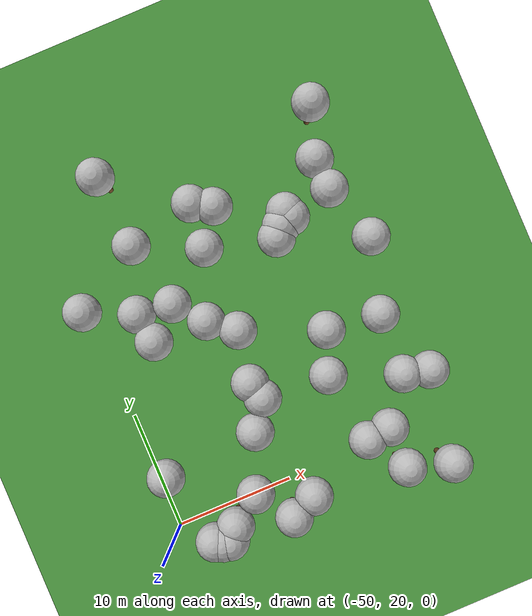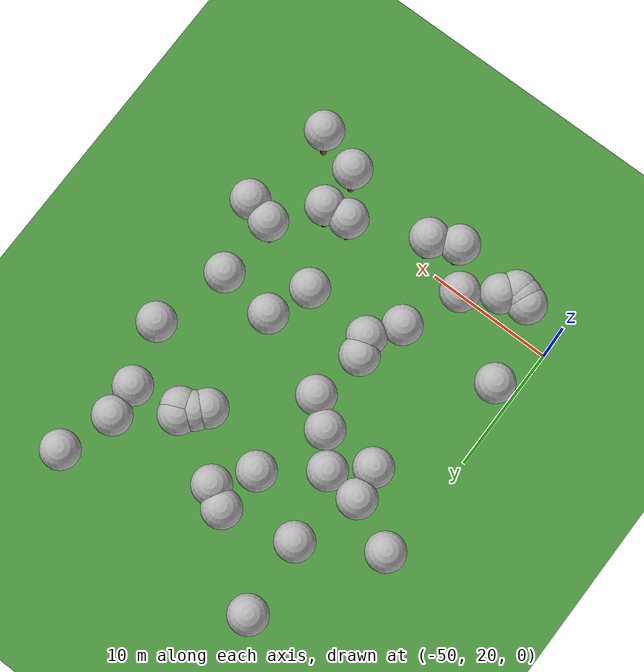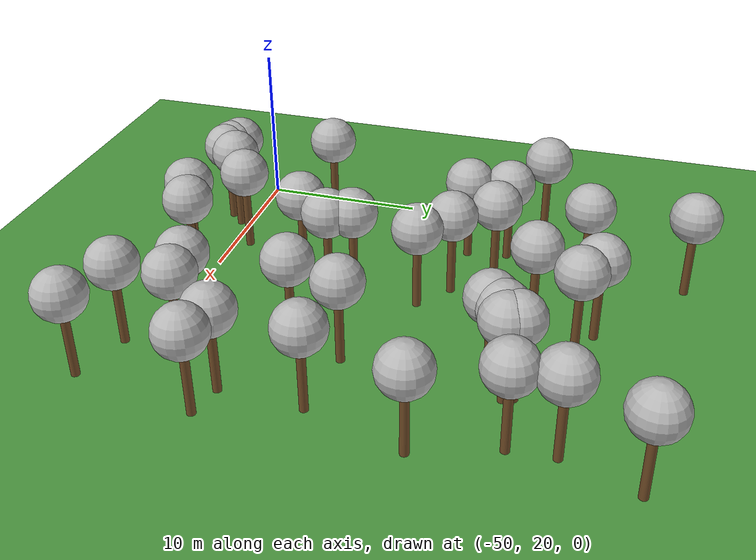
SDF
<sdf version="1.5">
 <world name="default">
  <model name="tree_simple493">
   <static>1</static>
   <link name="link">
    <pose>0 0 0.1 0 -0 0</pose>
    <collision name="collision_trunk">
     <pose>0 0 2 0 -0 0</pose>
     <geometry><cylinder><radius>0.25</radius><length>4</length></cylinder></geometry>
    </collision>
    <collision name="collision_treetop">
     <pose>0 0 5.2 0 -0 0</pose>
     <geometry><sphere><radius>1.5</radius></sphere></geometry>
    </collision>
    <visual name="trunk">
     <pose>0 0 2 0 -0 0</pose>
     <geometry><cylinder><radius>0.25</radius><length>4</length></cylinder></geometry>
     <material>
      <script>
       <uri>model://tree_simple/scripts</uri>
       <uri>model://tree_simple/materials/textures</uri>
       <name>TreeSimple/Trunk</name>
      </script>
     </material>
    </visual>
    <visual name="treetop">
     <pose>0 0 5.2 0 -0 0</pose>
     <geometry><sphere><radius>1.5</radius></sphere></geometry>
     <material>
      <script>
       <uri>model://tree_simple/scripts</uri>
       <uri>model://tree_simple/materials/textures</uri>
       <name>TreeSimple/Treetop</name>
      </script>
     </material>
    </visual>
   </link>
   <pose>-30.9686104206 18.3944298941 0 0 -0 0</pose>
  </model>
  <model name="tree_simple489">
   <static>1</static>
   <link name="link">
    <pose>0 0 0.1 0 -0 0</pose>
    <collision name="collision_trunk">
     <pose>0 0 2 0 -0 0</pose>
     <geometry><cylinder><radius>0.25</radius><length>4</length></cylinder></geometry>
    </collision>
    <collision name="collision_treetop">
     <pose>0 0 5.2 0 -0 0</pose>
     <geometry><sphere><radius>1.5</radius></sphere></geometry>
    </collision>
    <visual name="trunk">
     <pose>0 0 2 0 -0 0</pose>
     <geometry><cylinder><radius>0.25</radius><length>4</length></cylinder></geometry>
     <material>
      <script>
       <uri>model://tree_simple/scripts</uri>
       <uri>model://tree_simple/materials/textures</uri>
       <name>TreeSimple/Trunk</name>
      </script>
     </material>
    </visual>
    <visual name="treetop">
     <pose>0 0 5.2 0 -0 0</pose>
     <geometry><sphere><radius>1.5</radius></sphere></geometry>
     <material>
      <script>
       <uri>model://tree_simple/scripts</uri>
       <uri>model://tree_simple/materials/textures</uri>
       <name>TreeSimple/Treetop</name>
      </script>
     </material>
    </visual>
   </link>
   <pose>-32.6634579524 39.3278172931 0 0 -0 0</pose>
  </model>
  <model name="tree_simple482">
   <static>1</static>
   <link name="link">
    <pose>0 0 0.1 0 -0 0</pose>
    <collision name="collision_trunk">
     <pose>0 0 2 0 -0 0</pose>
     <geometry><cylinder><radius>0.25</radius><length>4</length></cylinder></geometry>
    </collision>
    <collision name="collision_treetop">
     <pose>0 0 5.2 0 -0 0</pose>
     <geometry><sphere><radius>1.5</radius></sphere></geometry>
    </collision>
    <visual name="trunk">
     <pose>0 0 2 0 -0 0</pose>
     <geometry><cylinder><radius>0.25</radius><length>4</length></cylinder></geometry>
     <material>
      <script>
       <uri>model://tree_simple/scripts</uri>
       <uri>model://tree_simple/materials/textures</uri>
       <name>TreeSimple/Trunk</name>
      </script>
     </material>
    </visual>
    <visual name="treetop">
     <pose>0 0 5.2 0 -0 0</pose>
     <geometry><sphere><radius>1.5</radius></sphere></geometry>
     <material>
      <script>
       <uri>model://tree_simple/scripts</uri>
       <uri>model://tree_simple/materials/textures</uri>
       <name>TreeSimple/Treetop</name>
      </script>
     </material>
    </visual>
   </link>
   <pose>-31.7137183406 39.6850484597 0 0 -0 0</pose>
  </model>
  <model name="tree_simple476">
   <static>1</static>
   <link name="link">
    <pose>0 0 0.1 0 -0 0</pose>
    <collision name="collision_trunk">
     <pose>0 0 2 0 -0 0</pose>
     <geometry><cylinder><radius>0.25</radius><length>4</length></cylinder></geometry>
    </collision>
    <collision name="collision_treetop">
     <pose>0 0 5.2 0 -0 0</pose>
     <geometry><sphere><radius>1.5</radius></sphere></geometry>
    </collision>
    <visual name="trunk">
     <pose>0 0 2 0 -0 0</pose>
     <geometry><cylinder><radius>0.25</radius><length>4</length></cylinder></geometry>
     <material>
      <script>
       <uri>model://tree_simple/scripts</uri>
       <uri>model://tree_simple/materials/textures</uri>
       <name>TreeSimple/Trunk</name>
      </script>
     </material>
    </visual>
    <visual name="treetop">
     <pose>0 0 5.2 0 -0 0</pose>
     <geometry><sphere><radius>1.5</radius></sphere></geometry>
     <material>
      <script>
       <uri>model://tree_simple/scripts</uri>
       <uri>model://tree_simple/materials/textures</uri>
       <name>TreeSimple/Treetop</name>
      </script>
     </material>
    </visual>
   </link>
   <pose>-40.490555579 18.243153787 0 0 -0 0</pose>
  </model>
  <model name="tree_simple474">
   <static>1</static>
   <link name="link">
    <pose>0 0 0.1 0 -0 0</pose>
    <collision name="collision_trunk">
     <pose>0 0 2 0 -0 0</pose>
     <geometry><cylinder><radius>0.25</radius><length>4</length></cylinder></geometry>
    </collision>
    <collision name="collision_treetop">
     <pose>0 0 5.2 0 -0 0</pose>
     <geometry><sphere><radius>1.5</radius></sphere></geometry>
    </collision>
    <visual name="trunk">
     <pose>0 0 2 0 -0 0</pose>
     <geometry><cylinder><radius>0.25</radius><length>4</length></cylinder></geometry>
     <material>
      <script>
       <uri>model://tree_simple/scripts</uri>
       <uri>model://tree_simple/materials/textures</uri>
       <name>TreeSimple/Trunk</name>
      </script>
     </material>
    </visual>
    <visual name="treetop">
     <pose>0 0 5.2 0 -0 0</pose>
     <geometry><sphere><radius>1.5</radius></sphere></geometry>
     <material>
      <script>
       <uri>model://tree_simple/scripts</uri>
       <uri>model://tree_simple/materials/textures</uri>
       <name>TreeSimple/Treetop</name>
      </script>
     </material>
    </visual>
   </link>
   <pose>-45.5609359524 37.3889677829 0 0 -0 0</pose>
  </model>
  <model name="tree_simple470">
   <static>1</static>
   <link name="link">
    <pose>0 0 0.1 0 -0 0</pose>
    <collision name="collision_trunk">
     <pose>0 0 2 0 -0 0</pose>
     <geometry><cylinder><radius>0.25</radius><length>4</length></cylinder></geometry>
    </collision>
    <collision name="collision_treetop">
     <pose>0 0 5.2 0 -0 0</pose>
     <geometry><sphere><radius>1.5</radius></sphere></geometry>
    </collision>
    <visual name="trunk">
     <pose>0 0 2 0 -0 0</pose>
     <geometry><cylinder><radius>0.25</radius><length>4</length></cylinder></geometry>
     <material>
      <script>
       <uri>model://tree_simple/scripts</uri>
       <uri>model://tree_simple/materials/textures</uri>
       <name>TreeSimple/Trunk</name>
      </script>
     </material>
    </visual>
    <visual name="treetop">
     <pose>0 0 5.2 0 -0 0</pose>
     <geometry><sphere><radius>1.5</radius></sphere></geometry>
     <material>
      <script>
       <uri>model://tree_simple/scripts</uri>
       <uri>model://tree_simple/materials/textures</uri>
       <name>TreeSimple/Treetop</name>
      </script>
     </material>
    </visual>
   </link>
   <pose>-42.5418923399 21.0598314505 0 0 -0 0</pose>
  </model>
  <model name="tree_simple467">
   <static>1</static>
   <link name="link">
    <pose>0 0 0.1 0 -0 0</pose>
    <collision name="collision_trunk">
     <pose>0 0 2 0 -0 0</pose>
     <geometry><cylinder><radius>0.25</radius><length>4</length></cylinder></geometry>
    </collision>
    <collision name="collision_treetop">
     <pose>0 0 5.2 0 -0 0</pose>
     <geometry><sphere><radius>1.5</radius></sphere></geometry>
    </collision>
    <visual name="trunk">
     <pose>0 0 2 0 -0 0</pose>
     <geometry><cylinder><radius>0.25</radius><length>4</length></cylinder></geometry>
     <material>
      <script>
       <uri>model://tree_simple/scripts</uri>
       <uri>model://tree_simple/materials/textures</uri>
       <name>TreeSimple/Trunk</name>
      </script>
     </material>
    </visual>
    <visual name="treetop">
     <pose>0 0 5.2 0 -0 0</pose>
     <geometry><sphere><radius>1.5</radius></sphere></geometry>
     <material>
      <script>
       <uri>model://tree_simple/scripts</uri>
       <uri>model://tree_simple/materials/textures</uri>
       <name>TreeSimple/Treetop</name>
      </script>
     </material>
    </visual>
   </link>
   <pose>-38.4435588212 19.1731926836 0 0 -0 0</pose>
  </model>
  <model name="tree_simple462">
   <static>1</static>
   <link name="link">
    <pose>0 0 0.1 0 -0 0</pose>
    <collision name="collision_trunk">
     <pose>0 0 2 0 -0 0</pose>
     <geometry><cylinder><radius>0.25</radius><length>4</length></cylinder></geometry>
    </collision>
    <collision name="collision_treetop">
     <pose>0 0 5.2 0 -0 0</pose>
     <geometry><sphere><radius>1.5</radius></sphere></geometry>
    </collision>
    <visual name="trunk">
     <pose>0 0 2 0 -0 0</pose>
     <geometry><cylinder><radius>0.25</radius><length>4</length></cylinder></geometry>
     <material>
      <script>
       <uri>model://tree_simple/scripts</uri>
       <uri>model://tree_simple/materials/textures</uri>
       <name>TreeSimple/Trunk</name>
      </script>
     </material>
    </visual>
    <visual name="treetop">
     <pose>0 0 5.2 0 -0 0</pose>
     <geometry><sphere><radius>1.5</radius></sphere></geometry>
     <material>
      <script>
       <uri>model://tree_simple/scripts</uri>
       <uri>model://tree_simple/materials/textures</uri>
       <name>TreeSimple/Treetop</name>
      </script>
     </material>
    </visual>
   </link>
   <pose>-33.3479265171 38.6010387018 0 0 -0 0</pose>
  </model>
  <model name="tree_simple440">
   <static>1</static>
   <link name="link">
    <pose>0 0 0.1 0 -0 0</pose>
    <collision name="collision_trunk">
     <pose>0 0 2 0 -0 0</pose>
     <geometry><cylinder><radius>0.25</radius><length>4</length></cylinder></geometry>
    </collision>
    <collision name="collision_treetop">
     <pose>0 0 5.2 0 -0 0</pose>
     <geometry><sphere><radius>1.5</radius></sphere></geometry>
    </collision>
    <visual name="trunk">
     <pose>0 0 2 0 -0 0</pose>
     <geometry><cylinder><radius>0.25</radius><length>4</length></cylinder></geometry>
     <material>
      <script>
       <uri>model://tree_simple/scripts</uri>
       <uri>model://tree_simple/materials/textures</uri>
       <name>TreeSimple/Trunk</name>
      </script>
     </material>
    </visual>
    <visual name="treetop">
     <pose>0 0 5.2 0 -0 0</pose>
     <geometry><sphere><radius>1.5</radius></sphere></geometry>
     <material>
      <script>
       <uri>model://tree_simple/scripts</uri>
       <uri>model://tree_simple/materials/textures</uri>
       <name>TreeSimple/Treetop</name>
      </script>
     </material>
    </visual>
   </link>
   <pose>-31.0139863597 21.7755311208 0 0 -0 0</pose>
  </model>
  <model name="tree_simple420">
   <static>1</static>
   <link name="link">
    <pose>0 0 0.1 0 -0 0</pose>
    <collision name="collision_trunk">
     <pose>0 0 2 0 -0 0</pose>
     <geometry><cylinder><radius>0.25</radius><length>4</length></cylinder></geometry>
    </collision>
    <collision name="collision_treetop">
     <pose>0 0 5.2 0 -0 0</pose>
     <geometry><sphere><radius>1.5</radius></sphere></geometry>
    </collision>
    <visual name="trunk">
     <pose>0 0 2 0 -0 0</pose>
     <geometry><cylinder><radius>0.25</radius><length>4</length></cylinder></geometry>
     <material>
      <script>
       <uri>model://tree_simple/scripts</uri>
       <uri>model://tree_simple/materials/textures</uri>
       <name>TreeSimple/Trunk</name>
      </script>
     </material>
    </visual>
    <visual name="treetop">
     <pose>0 0 5.2 0 -0 0</pose>
     <geometry><sphere><radius>1.5</radius></sphere></geometry>
     <material>
      <script>
       <uri>model://tree_simple/scripts</uri>
       <uri>model://tree_simple/materials/textures</uri>
       <name>TreeSimple/Treetop</name>
      </script>
     </material>
    </visual>
   </link>
   <pose>-46.8738530937 18.9140158148 0 0 -0 0</pose>
  </model>
  <model name="tree_simple410">
   <static>1</static>
   <link name="link">
    <pose>0 0 0.1 0 -0 0</pose>
    <collision name="collision_trunk">
     <pose>0 0 2 0 -0 0</pose>
     <geometry><cylinder><radius>0.25</radius><length>4</length></cylinder></geometry>
    </collision>
    <collision name="collision_treetop">
     <pose>0 0 5.2 0 -0 0</pose>
     <geometry><sphere><radius>1.5</radius></sphere></geometry>
    </collision>
    <visual name="trunk">
     <pose>0 0 2 0 -0 0</pose>
     <geometry><cylinder><radius>0.25</radius><length>4</length></cylinder></geometry>
     <material>
      <script>
       <uri>model://tree_simple/scripts</uri>
       <uri>model://tree_simple/materials/textures</uri>
       <name>TreeSimple/Trunk</name>
      </script>
     </material>
    </visual>
    <visual name="treetop">
     <pose>0 0 5.2 0 -0 0</pose>
     <geometry><sphere><radius>1.5</radius></sphere></geometry>
     <material>
      <script>
       <uri>model://tree_simple/scripts</uri>
       <uri>model://tree_simple/materials/textures</uri>
       <name>TreeSimple/Treetop</name>
      </script>
     </material>
    </visual>
   </link>
   <pose>-31.9347087499 40.2537422087 0 0 -0 0</pose>
  </model>
  <model name="tree_simple358">
   <static>1</static>
   <link name="link">
    <pose>0 0 0.1 0 -0 0</pose>
    <collision name="collision_trunk">
     <pose>0 0 2 0 -0 0</pose>
     <geometry><cylinder><radius>0.25</radius><length>4</length></cylinder></geometry>
    </collision>
    <collision name="collision_treetop">
     <pose>0 0 5.2 0 -0 0</pose>
     <geometry><sphere><radius>1.5</radius></sphere></geometry>
    </collision>
    <visual name="trunk">
     <pose>0 0 2 0 -0 0</pose>
     <geometry><cylinder><radius>0.25</radius><length>4</length></cylinder></geometry>
     <material>
      <script>
       <uri>model://tree_simple/scripts</uri>
       <uri>model://tree_simple/materials/textures</uri>
       <name>TreeSimple/Trunk</name>
      </script>
     </material>
    </visual>
    <visual name="treetop">
     <pose>0 0 5.2 0 -0 0</pose>
     <geometry><sphere><radius>1.5</radius></sphere></geometry>
     <material>
      <script>
       <uri>model://tree_simple/scripts</uri>
       <uri>model://tree_simple/materials/textures</uri>
       <name>TreeSimple/Treetop</name>
      </script>
     </material>
    </visual>
   </link>
   <pose>-28.1059387966 40.529489556 0 0 -0 0</pose>
  </model>
  <model name="tree_simple351">
   <static>1</static>
   <link name="link">
    <pose>0 0 0.1 0 -0 0</pose>
    <collision name="collision_trunk">
     <pose>0 0 2 0 -0 0</pose>
     <geometry><cylinder><radius>0.25</radius><length>4</length></cylinder></geometry>
    </collision>
    <collision name="collision_treetop">
     <pose>0 0 5.2 0 -0 0</pose>
     <geometry><sphere><radius>1.5</radius></sphere></geometry>
    </collision>
    <visual name="trunk">
     <pose>0 0 2 0 -0 0</pose>
     <geometry><cylinder><radius>0.25</radius><length>4</length></cylinder></geometry>
     <material>
      <script>
       <uri>model://tree_simple/scripts</uri>
       <uri>model://tree_simple/materials/textures</uri>
       <name>TreeSimple/Trunk</name>
      </script>
     </material>
    </visual>
    <visual name="treetop">
     <pose>0 0 5.2 0 -0 0</pose>
     <geometry><sphere><radius>1.5</radius></sphere></geometry>
     <material>
      <script>
       <uri>model://tree_simple/scripts</uri>
       <uri>model://tree_simple/materials/textures</uri>
       <name>TreeSimple/Treetop</name>
      </script>
     </material>
    </visual>
   </link>
   <pose>-28.4628783032 25.1782097003 0 0 -0 0</pose>
  </model>
  <model name="tree_simple336">
   <static>1</static>
   <link name="link">
    <pose>0 0 0.1 0 -0 0</pose>
    <collision name="collision_trunk">
     <pose>0 0 2 0 -0 0</pose>
     <geometry><cylinder><radius>0.25</radius><length>4</length></cylinder></geometry>
    </collision>
    <collision name="collision_treetop">
     <pose>0 0 5.2 0 -0 0</pose>
     <geometry><sphere><radius>1.5</radius></sphere></geometry>
    </collision>
    <visual name="trunk">
     <pose>0 0 2 0 -0 0</pose>
     <geometry><cylinder><radius>0.25</radius><length>4</length></cylinder></geometry>
     <material>
      <script>
       <uri>model://tree_simple/scripts</uri>
       <uri>model://tree_simple/materials/textures</uri>
       <name>TreeSimple/Trunk</name>
      </script>
     </material>
    </visual>
    <visual name="treetop">
     <pose>0 0 5.2 0 -0 0</pose>
     <geometry><sphere><radius>1.5</radius></sphere></geometry>
     <material>
      <script>
       <uri>model://tree_simple/scripts</uri>
       <uri>model://tree_simple/materials/textures</uri>
       <name>TreeSimple/Treetop</name>
      </script>
     </material>
    </visual>
   </link>
   <pose>-43.9020074738 42.4187815875 0 0 -0 0</pose>
  </model>
  <model name="tree_simple331">
   <static>1</static>
   <link name="link">
    <pose>0 0 0.1 0 -0 0</pose>
    <collision name="collision_trunk">
     <pose>0 0 2 0 -0 0</pose>
     <geometry><cylinder><radius>0.25</radius><length>4</length></cylinder></geometry>
    </collision>
    <collision name="collision_treetop">
     <pose>0 0 5.2 0 -0 0</pose>
     <geometry><sphere><radius>1.5</radius></sphere></geometry>
    </collision>
    <visual name="trunk">
     <pose>0 0 2 0 -0 0</pose>
     <geometry><cylinder><radius>0.25</radius><length>4</length></cylinder></geometry>
     <material>
      <script>
       <uri>model://tree_simple/scripts</uri>
       <uri>model://tree_simple/materials/textures</uri>
       <name>TreeSimple/Trunk</name>
      </script>
     </material>
    </visual>
    <visual name="treetop">
     <pose>0 0 5.2 0 -0 0</pose>
     <geometry><sphere><radius>1.5</radius></sphere></geometry>
     <material>
      <script>
       <uri>model://tree_simple/scripts</uri>
       <uri>model://tree_simple/materials/textures</uri>
       <name>TreeSimple/Treetop</name>
      </script>
     </material>
    </visual>
   </link>
   <pose>-40.8341940448 34.8238319948 0 0 -0 0</pose>
  </model>
  <model name="tree_simple319">
   <static>1</static>
   <link name="link">
    <pose>0 0 0.1 0 -0 0</pose>
    <collision name="collision_trunk">
     <pose>0 0 2 0 -0 0</pose>
     <geometry><cylinder><radius>0.25</radius><length>4</length></cylinder></geometry>
    </collision>
    <collision name="collision_treetop">
     <pose>0 0 5.2 0 -0 0</pose>
     <geometry><sphere><radius>1.5</radius></sphere></geometry>
    </collision>
    <visual name="trunk">
     <pose>0 0 2 0 -0 0</pose>
     <geometry><cylinder><radius>0.25</radius><length>4</length></cylinder></geometry>
     <material>
      <script>
       <uri>model://tree_simple/scripts</uri>
       <uri>model://tree_simple/materials/textures</uri>
       <name>TreeSimple/Trunk</name>
      </script>
     </material>
    </visual>
    <visual name="treetop">
     <pose>0 0 5.2 0 -0 0</pose>
     <geometry><sphere><radius>1.5</radius></sphere></geometry>
     <material>
      <script>
       <uri>model://tree_simple/scripts</uri>
       <uri>model://tree_simple/materials/textures</uri>
       <name>TreeSimple/Treetop</name>
      </script>
     </material>
    </visual>
   </link>
   <pose>-33.8227496689 27.309967617 0 0 -0 0</pose>
  </model>
  <model name="tree_simple311">
   <static>1</static>
   <link name="link">
    <pose>0 0 0.1 0 -0 0</pose>
    <collision name="collision_trunk">
     <pose>0 0 2 0 -0 0</pose>
     <geometry><cylinder><radius>0.25</radius><length>4</length></cylinder></geometry>
    </collision>
    <collision name="collision_treetop">
     <pose>0 0 5.2 0 -0 0</pose>
     <geometry><sphere><radius>1.5</radius></sphere></geometry>
    </collision>
    <visual name="trunk">
     <pose>0 0 2 0 -0 0</pose>
     <geometry><cylinder><radius>0.25</radius><length>4</length></cylinder></geometry>
     <material>
      <script>
       <uri>model://tree_simple/scripts</uri>
       <uri>model://tree_simple/materials/textures</uri>
       <name>TreeSimple/Trunk</name>
      </script>
     </material>
    </visual>
    <visual name="treetop">
     <pose>0 0 5.2 0 -0 0</pose>
     <geometry><sphere><radius>1.5</radius></sphere></geometry>
     <material>
      <script>
       <uri>model://tree_simple/scripts</uri>
       <uri>model://tree_simple/materials/textures</uri>
       <name>TreeSimple/Treetop</name>
      </script>
     </material>
    </visual>
   </link>
   <pose>-49.3857645653 39.1709388153 0 0 -0 0</pose>
  </model>
  <model name="tree_simple291">
   <static>1</static>
   <link name="link">
    <pose>0 0 0.1 0 -0 0</pose>
    <collision name="collision_trunk">
     <pose>0 0 2 0 -0 0</pose>
     <geometry><cylinder><radius>0.25</radius><length>4</length></cylinder></geometry>
    </collision>
    <collision name="collision_treetop">
     <pose>0 0 5.2 0 -0 0</pose>
     <geometry><sphere><radius>1.5</radius></sphere></geometry>
    </collision>
    <visual name="trunk">
     <pose>0 0 2 0 -0 0</pose>
     <geometry><cylinder><radius>0.25</radius><length>4</length></cylinder></geometry>
     <material>
      <script>
       <uri>model://tree_simple/scripts</uri>
       <uri>model://tree_simple/materials/textures</uri>
       <name>TreeSimple/Trunk</name>
      </script>
     </material>
    </visual>
    <visual name="treetop">
     <pose>0 0 5.2 0 -0 0</pose>
     <geometry><sphere><radius>1.5</radius></sphere></geometry>
     <material>
      <script>
       <uri>model://tree_simple/scripts</uri>
       <uri>model://tree_simple/materials/textures</uri>
       <name>TreeSimple/Treetop</name>
      </script>
     </material>
    </visual>
   </link>
   <pose>-38.780558868 40.0860126223 0 0 -0 0</pose>
  </model>
  <model name="tree_simple286">
   <static>1</static>
   <link name="link">
    <pose>0 0 0.1 0 -0 0</pose>
    <collision name="collision_trunk">
     <pose>0 0 2 0 -0 0</pose>
     <geometry><cylinder><radius>0.25</radius><length>4</length></cylinder></geometry>
    </collision>
    <collision name="collision_treetop">
     <pose>0 0 5.2 0 -0 0</pose>
     <geometry><sphere><radius>1.5</radius></sphere></geometry>
    </collision>
    <visual name="trunk">
     <pose>0 0 2 0 -0 0</pose>
     <geometry><cylinder><radius>0.25</radius><length>4</length></cylinder></geometry>
     <material>
      <script>
       <uri>model://tree_simple/scripts</uri>
       <uri>model://tree_simple/materials/textures</uri>
       <name>TreeSimple/Trunk</name>
      </script>
     </material>
    </visual>
    <visual name="treetop">
     <pose>0 0 5.2 0 -0 0</pose>
     <geometry><sphere><radius>1.5</radius></sphere></geometry>
     <material>
      <script>
       <uri>model://tree_simple/scripts</uri>
       <uri>model://tree_simple/materials/textures</uri>
       <name>TreeSimple/Treetop</name>
      </script>
     </material>
    </visual>
   </link>
   <pose>-48.4343960976 24.9011596552 0 0 -0 0</pose>
  </model>
  <model name="tree_simple264">
   <static>1</static>
   <link name="link">
    <pose>0 0 0.1 0 -0 0</pose>
    <collision name="collision_trunk">
     <pose>0 0 2 0 -0 0</pose>
     <geometry><cylinder><radius>0.25</radius><length>4</length></cylinder></geometry>
    </collision>
    <collision name="collision_treetop">
     <pose>0 0 5.2 0 -0 0</pose>
     <geometry><sphere><radius>1.5</radius></sphere></geometry>
    </collision>
    <visual name="trunk">
     <pose>0 0 2 0 -0 0</pose>
     <geometry><cylinder><radius>0.25</radius><length>4</length></cylinder></geometry>
     <material>
      <script>
       <uri>model://tree_simple/scripts</uri>
       <uri>model://tree_simple/materials/textures</uri>
       <name>TreeSimple/Trunk</name>
      </script>
     </material>
    </visual>
    <visual name="treetop">
     <pose>0 0 5.2 0 -0 0</pose>
     <geometry><sphere><radius>1.5</radius></sphere></geometry>
     <material>
      <script>
       <uri>model://tree_simple/scripts</uri>
       <uri>model://tree_simple/materials/textures</uri>
       <name>TreeSimple/Treetop</name>
      </script>
     </material>
    </visual>
   </link>
   <pose>-26.5960769864 35.8751081016 0 0 -0 0</pose>
  </model>
  <model name="tree_simple256">
   <static>1</static>
   <link name="link">
    <pose>0 0 0.1 0 -0 0</pose>
    <collision name="collision_trunk">
     <pose>0 0 2 0 -0 0</pose>
     <geometry><cylinder><radius>0.25</radius><length>4</length></cylinder></geometry>
    </collision>
    <collision name="collision_treetop">
     <pose>0 0 5.2 0 -0 0</pose>
     <geometry><sphere><radius>1.5</radius></sphere></geometry>
    </collision>
    <visual name="trunk">
     <pose>0 0 2 0 -0 0</pose>
     <geometry><cylinder><radius>0.25</radius><length>4</length></cylinder></geometry>
     <material>
      <script>
       <uri>model://tree_simple/scripts</uri>
       <uri>model://tree_simple/materials/textures</uri>
       <name>TreeSimple/Trunk</name>
      </script>
     </material>
    </visual>
    <visual name="treetop">
     <pose>0 0 5.2 0 -0 0</pose>
     <geometry><sphere><radius>1.5</radius></sphere></geometry>
     <material>
      <script>
       <uri>model://tree_simple/scripts</uri>
       <uri>model://tree_simple/materials/textures</uri>
       <name>TreeSimple/Treetop</name>
      </script>
     </material>
    </visual>
   </link>
   <pose>-38.4325558623 43.6568851864 0 0 -0 0</pose>
  </model>
  <model name="tree_simple247">
   <static>1</static>
   <link name="link">
    <pose>0 0 0.1 0 -0 0</pose>
    <collision name="collision_trunk">
     <pose>0 0 2 0 -0 0</pose>
     <geometry><cylinder><radius>0.25</radius><length>4</length></cylinder></geometry>
    </collision>
    <collision name="collision_treetop">
     <pose>0 0 5.2 0 -0 0</pose>
     <geometry><sphere><radius>1.5</radius></sphere></geometry>
    </collision>
    <visual name="trunk">
     <pose>0 0 2 0 -0 0</pose>
     <geometry><cylinder><radius>0.25</radius><length>4</length></cylinder></geometry>
     <material>
      <script>
       <uri>model://tree_simple/scripts</uri>
       <uri>model://tree_simple/materials/textures</uri>
       <name>TreeSimple/Trunk</name>
      </script>
     </material>
    </visual>
    <visual name="treetop">
     <pose>0 0 5.2 0 -0 0</pose>
     <geometry><sphere><radius>1.5</radius></sphere></geometry>
     <material>
      <script>
       <uri>model://tree_simple/scripts</uri>
       <uri>model://tree_simple/materials/textures</uri>
       <name>TreeSimple/Treetop</name>
      </script>
     </material>
    </visual>
   </link>
   <pose>-44.3832388131 48.3955182604 0 0 -0 0</pose>
  </model>
  <model name="tree_simple236">
   <static>1</static>
   <link name="link">
    <pose>0 0 0.1 0 -0 0</pose>
    <collision name="collision_trunk">
     <pose>0 0 2 0 -0 0</pose>
     <geometry><cylinder><radius>0.25</radius><length>4</length></cylinder></geometry>
    </collision>
    <collision name="collision_treetop">
     <pose>0 0 5.2 0 -0 0</pose>
     <geometry><sphere><radius>1.5</radius></sphere></geometry>
    </collision>
    <visual name="trunk">
     <pose>0 0 2 0 -0 0</pose>
     <geometry><cylinder><radius>0.25</radius><length>4</length></cylinder></geometry>
     <material>
      <script>
       <uri>model://tree_simple/scripts</uri>
       <uri>model://tree_simple/materials/textures</uri>
       <name>TreeSimple/Trunk</name>
      </script>
     </material>
    </visual>
    <visual name="treetop">
     <pose>0 0 5.2 0 -0 0</pose>
     <geometry><sphere><radius>1.5</radius></sphere></geometry>
     <material>
      <script>
       <uri>model://tree_simple/scripts</uri>
       <uri>model://tree_simple/materials/textures</uri>
       <name>TreeSimple/Treetop</name>
      </script>
     </material>
    </visual>
   </link>
   <pose>-28.2556560036 43.088579588 0 0 -0 0</pose>
  </model>
  <model name="tree_simple208">
   <static>1</static>
   <link name="link">
    <pose>0 0 0.1 0 -0 0</pose>
    <collision name="collision_trunk">
     <pose>0 0 2 0 -0 0</pose>
     <geometry><cylinder><radius>0.25</radius><length>4</length></cylinder></geometry>
    </collision>
    <collision name="collision_treetop">
     <pose>0 0 5.2 0 -0 0</pose>
     <geometry><sphere><radius>1.5</radius></sphere></geometry>
    </collision>
    <visual name="trunk">
     <pose>0 0 2 0 -0 0</pose>
     <geometry><cylinder><radius>0.25</radius><length>4</length></cylinder></geometry>
     <material>
      <script>
       <uri>model://tree_simple/scripts</uri>
       <uri>model://tree_simple/materials/textures</uri>
       <name>TreeSimple/Trunk</name>
      </script>
     </material>
    </visual>
    <visual name="treetop">
     <pose>0 0 5.2 0 -0 0</pose>
     <geometry><sphere><radius>1.5</radius></sphere></geometry>
     <material>
      <script>
       <uri>model://tree_simple/scripts</uri>
       <uri>model://tree_simple/materials/textures</uri>
       <name>TreeSimple/Treetop</name>
      </script>
     </material>
    </visual>
   </link>
   <pose>-39.1560557195 27.6775865092 0 0 -0 0</pose>
  </model>
  <model name="tree_simple205">
   <static>1</static>
   <link name="link">
    <pose>0 0 0.1 0 -0 0</pose>
    <collision name="collision_trunk">
     <pose>0 0 2 0 -0 0</pose>
     <geometry><cylinder><radius>0.25</radius><length>4</length></cylinder></geometry>
    </collision>
    <collision name="collision_treetop">
     <pose>0 0 5.2 0 -0 0</pose>
     <geometry><sphere><radius>1.5</radius></sphere></geometry>
    </collision>
    <visual name="trunk">
     <pose>0 0 2 0 -0 0</pose>
     <geometry><cylinder><radius>0.25</radius><length>4</length></cylinder></geometry>
     <material>
      <script>
       <uri>model://tree_simple/scripts</uri>
       <uri>model://tree_simple/materials/textures</uri>
       <name>TreeSimple/Trunk</name>
      </script>
     </material>
    </visual>
    <visual name="treetop">
     <pose>0 0 5.2 0 -0 0</pose>
     <geometry><sphere><radius>1.5</radius></sphere></geometry>
     <material>
      <script>
       <uri>model://tree_simple/scripts</uri>
       <uri>model://tree_simple/materials/textures</uri>
       <name>TreeSimple/Treetop</name>
      </script>
     </material>
    </visual>
   </link>
   <pose>-28.261168219 30.0880019851 0 0 -0 0</pose>
  </model>
  <model name="tree_simple186">
   <static>1</static>
   <link name="link">
    <pose>0 0 0.1 0 -0 0</pose>
    <collision name="collision_trunk">
     <pose>0 0 2 0 -0 0</pose>
     <geometry><cylinder><radius>0.25</radius><length>4</length></cylinder></geometry>
    </collision>
    <collision name="collision_treetop">
     <pose>0 0 5.2 0 -0 0</pose>
     <geometry><sphere><radius>1.5</radius></sphere></geometry>
    </collision>
    <visual name="trunk">
     <pose>0 0 2 0 -0 0</pose>
     <geometry><cylinder><radius>0.25</radius><length>4</length></cylinder></geometry>
     <material>
      <script>
       <uri>model://tree_simple/scripts</uri>
       <uri>model://tree_simple/materials/textures</uri>
       <name>TreeSimple/Trunk</name>
      </script>
     </material>
    </visual>
    <visual name="treetop">
     <pose>0 0 5.2 0 -0 0</pose>
     <geometry><sphere><radius>1.5</radius></sphere></geometry>
     <material>
      <script>
       <uri>model://tree_simple/scripts</uri>
       <uri>model://tree_simple/materials/textures</uri>
       <name>TreeSimple/Treetop</name>
      </script>
     </material>
    </visual>
   </link>
   <pose>-26.4394079644 24.666728782 0 0 -0 0</pose>
  </model>
  <model name="tree_simple132">
   <static>1</static>
   <link name="link">
    <pose>0 0 0.1 0 -0 0</pose>
    <collision name="collision_trunk">
     <pose>0 0 2 0 -0 0</pose>
     <geometry><cylinder><radius>0.25</radius><length>4</length></cylinder></geometry>
    </collision>
    <collision name="collision_treetop">
     <pose>0 0 5.2 0 -0 0</pose>
     <geometry><sphere><radius>1.5</radius></sphere></geometry>
    </collision>
    <visual name="trunk">
     <pose>0 0 2 0 -0 0</pose>
     <geometry><cylinder><radius>0.25</radius><length>4</length></cylinder></geometry>
     <material>
      <script>
       <uri>model://tree_simple/scripts</uri>
       <uri>model://tree_simple/materials/textures</uri>
       <name>TreeSimple/Trunk</name>
      </script>
     </material>
    </visual>
    <visual name="treetop">
     <pose>0 0 5.2 0 -0 0</pose>
     <geometry><sphere><radius>1.5</radius></sphere></geometry>
     <material>
      <script>
       <uri>model://tree_simple/scripts</uri>
       <uri>model://tree_simple/materials/textures</uri>
       <name>TreeSimple/Treetop</name>
      </script>
     </material>
    </visual>
   </link>
   <pose>-26.8565746681 47.2141464963 0 0 -0 0</pose>
  </model>
  <model name="tree_simple127">
   <static>1</static>
   <link name="link">
    <pose>0 0 0.1 0 -0 0</pose>
    <collision name="collision_trunk">
     <pose>0 0 2 0 -0 0</pose>
     <geometry><cylinder><radius>0.25</radius><length>4</length></cylinder></geometry>
    </collision>
    <collision name="collision_treetop">
     <pose>0 0 5.2 0 -0 0</pose>
     <geometry><sphere><radius>1.5</radius></sphere></geometry>
    </collision>
    <visual name="trunk">
     <pose>0 0 2 0 -0 0</pose>
     <geometry><cylinder><radius>0.25</radius><length>4</length></cylinder></geometry>
     <material>
      <script>
       <uri>model://tree_simple/scripts</uri>
       <uri>model://tree_simple/materials/textures</uri>
       <name>TreeSimple/Trunk</name>
      </script>
     </material>
    </visual>
    <visual name="treetop">
     <pose>0 0 5.2 0 -0 0</pose>
     <geometry><sphere><radius>1.5</radius></sphere></geometry>
     <material>
      <script>
       <uri>model://tree_simple/scripts</uri>
       <uri>model://tree_simple/materials/textures</uri>
       <name>TreeSimple/Treetop</name>
      </script>
     </material>
    </visual>
   </link>
   <pose>-45.7202624904 18.511982554 0 0 -0 0</pose>
  </model>
  <model name="tree_simple122">
   <static>1</static>
   <link name="link">
    <pose>0 0 0.1 0 -0 0</pose>
    <collision name="collision_trunk">
     <pose>0 0 2 0 -0 0</pose>
     <geometry><cylinder><radius>0.25</radius><length>4</length></cylinder></geometry>
    </collision>
    <collision name="collision_treetop">
     <pose>0 0 5.2 0 -0 0</pose>
     <geometry><sphere><radius>1.5</radius></sphere></geometry>
    </collision>
    <visual name="trunk">
     <pose>0 0 2 0 -0 0</pose>
     <geometry><cylinder><radius>0.25</radius><length>4</length></cylinder></geometry>
     <material>
      <script>
       <uri>model://tree_simple/scripts</uri>
       <uri>model://tree_simple/materials/textures</uri>
       <name>TreeSimple/Trunk</name>
      </script>
     </material>
    </visual>
    <visual name="treetop">
     <pose>0 0 5.2 0 -0 0</pose>
     <geometry><sphere><radius>1.5</radius></sphere></geometry>
     <material>
      <script>
       <uri>model://tree_simple/scripts</uri>
       <uri>model://tree_simple/materials/textures</uri>
       <name>TreeSimple/Treetop</name>
      </script>
     </material>
    </visual>
   </link>
   <pose>-44.9070413792 19.4157710588 0 0 -0 0</pose>
  </model>
  <model name="tree_simple119">
   <static>1</static>
   <link name="link">
    <pose>0 0 0.1 0 -0 0</pose>
    <collision name="collision_trunk">
     <pose>0 0 2 0 -0 0</pose>
     <geometry><cylinder><radius>0.25</radius><length>4</length></cylinder></geometry>
    </collision>
    <collision name="collision_treetop">
     <pose>0 0 5.2 0 -0 0</pose>
     <geometry><sphere><radius>1.5</radius></sphere></geometry>
    </collision>
    <visual name="trunk">
     <pose>0 0 2 0 -0 0</pose>
     <geometry><cylinder><radius>0.25</radius><length>4</length></cylinder></geometry>
     <material>
      <script>
       <uri>model://tree_simple/scripts</uri>
       <uri>model://tree_simple/materials/textures</uri>
       <name>TreeSimple/Trunk</name>
      </script>
     </material>
    </visual>
    <visual name="treetop">
     <pose>0 0 5.2 0 -0 0</pose>
     <geometry><sphere><radius>1.5</radius></sphere></geometry>
     <material>
      <script>
       <uri>model://tree_simple/scripts</uri>
       <uri>model://tree_simple/materials/textures</uri>
       <name>TreeSimple/Treetop</name>
      </script>
     </material>
    </visual>
   </link>
   <pose>-27.5998375986 17.3076325805 0 0 -0 0</pose>
  </model>
  <model name="tree_simple117">
   <static>1</static>
   <link name="link">
    <pose>0 0 0.1 0 -0 0</pose>
    <collision name="collision_trunk">
     <pose>0 0 2 0 -0 0</pose>
     <geometry><cylinder><radius>0.25</radius><length>4</length></cylinder></geometry>
    </collision>
    <collision name="collision_treetop">
     <pose>0 0 5.2 0 -0 0</pose>
     <geometry><sphere><radius>1.5</radius></sphere></geometry>
    </collision>
    <visual name="trunk">
     <pose>0 0 2 0 -0 0</pose>
     <geometry><cylinder><radius>0.25</radius><length>4</length></cylinder></geometry>
     <material>
      <script>
       <uri>model://tree_simple/scripts</uri>
       <uri>model://tree_simple/materials/textures</uri>
       <name>TreeSimple/Trunk</name>
      </script>
     </material>
    </visual>
    <visual name="treetop">
     <pose>0 0 5.2 0 -0 0</pose>
     <geometry><sphere><radius>1.5</radius></sphere></geometry>
     <material>
      <script>
       <uri>model://tree_simple/scripts</uri>
       <uri>model://tree_simple/materials/textures</uri>
       <name>TreeSimple/Treetop</name>
      </script>
     </material>
    </visual>
   </link>
   <pose>-46.2827238601 18.6501285005 0 0 -0 0</pose>
  </model>
  <model name="tree_simple112">
   <static>1</static>
   <link name="link">
    <pose>0 0 0.1 0 -0 0</pose>
    <collision name="collision_trunk">
     <pose>0 0 2 0 -0 0</pose>
     <geometry><cylinder><radius>0.25</radius><length>4</length></cylinder></geometry>
    </collision>
    <collision name="collision_treetop">
     <pose>0 0 5.2 0 -0 0</pose>
     <geometry><sphere><radius>1.5</radius></sphere></geometry>
    </collision>
    <visual name="trunk">
     <pose>0 0 2 0 -0 0</pose>
     <geometry><cylinder><radius>0.25</radius><length>4</length></cylinder></geometry>
     <material>
      <script>
       <uri>model://tree_simple/scripts</uri>
       <uri>model://tree_simple/materials/textures</uri>
       <name>TreeSimple/Trunk</name>
      </script>
     </material>
    </visual>
    <visual name="treetop">
     <pose>0 0 5.2 0 -0 0</pose>
     <geometry><sphere><radius>1.5</radius></sphere></geometry>
     <material>
      <script>
       <uri>model://tree_simple/scripts</uri>
       <uri>model://tree_simple/materials/textures</uri>
       <name>TreeSimple/Treetop</name>
      </script>
     </material>
    </visual>
   </link>
   <pose>-36.862810057 42.7576459823 0 0 -0 0</pose>
  </model>
  <model name="tree_simple109">
   <static>1</static>
   <link name="link">
    <pose>0 0 0.1 0 -0 0</pose>
    <collision name="collision_trunk">
     <pose>0 0 2 0 -0 0</pose>
     <geometry><cylinder><radius>0.25</radius><length>4</length></cylinder></geometry>
    </collision>
    <collision name="collision_treetop">
     <pose>0 0 5.2 0 -0 0</pose>
     <geometry><sphere><radius>1.5</radius></sphere></geometry>
    </collision>
    <visual name="trunk">
     <pose>0 0 2 0 -0 0</pose>
     <geometry><cylinder><radius>0.25</radius><length>4</length></cylinder></geometry>
     <material>
      <script>
       <uri>model://tree_simple/scripts</uri>
       <uri>model://tree_simple/materials/textures</uri>
       <name>TreeSimple/Trunk</name>
      </script>
     </material>
    </visual>
    <visual name="treetop">
     <pose>0 0 5.2 0 -0 0</pose>
     <geometry><sphere><radius>1.5</radius></sphere></geometry>
     <material>
      <script>
       <uri>model://tree_simple/scripts</uri>
       <uri>model://tree_simple/materials/textures</uri>
       <name>TreeSimple/Treetop</name>
      </script>
     </material>
    </visual>
   </link>
   <pose>-42.7379400786 37.0728302321 0 0 -0 0</pose>
  </model>
  <model name="tree_simple53">
   <static>1</static>
   <link name="link">
    <pose>0 0 0.1 0 -0 0</pose>
    <collision name="collision_trunk">
     <pose>0 0 2 0 -0 0</pose>
     <geometry><cylinder><radius>0.25</radius><length>4</length></cylinder></geometry>
    </collision>
    <collision name="collision_treetop">
     <pose>0 0 5.2 0 -0 0</pose>
     <geometry><sphere><radius>1.5</radius></sphere></geometry>
    </collision>
    <visual name="trunk">
     <pose>0 0 2 0 -0 0</pose>
     <geometry><cylinder><radius>0.25</radius><length>4</length></cylinder></geometry>
     <material>
      <script>
       <uri>model://tree_simple/scripts</uri>
       <uri>model://tree_simple/materials/textures</uri>
       <name>TreeSimple/Trunk</name>
      </script>
     </material>
    </visual>
    <visual name="treetop">
     <pose>0 0 5.2 0 -0 0</pose>
     <geometry><sphere><radius>1.5</radius></sphere></geometry>
     <material>
      <script>
       <uri>model://tree_simple/scripts</uri>
       <uri>model://tree_simple/materials/textures</uri>
       <name>TreeSimple/Treetop</name>
      </script>
     </material>
    </visual>
   </link>
   <pose>-38.8612108818 33.2267374622 0 0 -0 0</pose>
  </model>
  <model name="tree_simple43">
   <static>1</static>
   <link name="link">
    <pose>0 0 0.1 0 -0 0</pose>
    <collision name="collision_trunk">
     <pose>0 0 2 0 -0 0</pose>
     <geometry><cylinder><radius>0.25</radius><length>4</length></cylinder></geometry>
    </collision>
    <collision name="collision_treetop">
     <pose>0 0 5.2 0 -0 0</pose>
     <geometry><sphere><radius>1.5</radius></sphere></geometry>
    </collision>
    <visual name="trunk">
     <pose>0 0 2 0 -0 0</pose>
     <geometry><cylinder><radius>0.25</radius><length>4</length></cylinder></geometry>
     <material>
      <script>
       <uri>model://tree_simple/scripts</uri>
       <uri>model://tree_simple/materials/textures</uri>
       <name>TreeSimple/Trunk</name>
      </script>
     </material>
    </visual>
    <visual name="treetop">
     <pose>0 0 5.2 0 -0 0</pose>
     <geometry><sphere><radius>1.5</radius></sphere></geometry>
     <material>
      <script>
       <uri>model://tree_simple/scripts</uri>
       <uri>model://tree_simple/materials/textures</uri>
       <name>TreeSimple/Treetop</name>
      </script>
     </material>
    </visual>
   </link>
   <pose>-32.9489924766 21.5371657104 0 0 -0 0</pose>
  </model>
  <model name="tree_simple36">
   <static>1</static>
   <link name="link">
    <pose>0 0 0.1 0 -0 0</pose>
    <collision name="collision_trunk">
     <pose>0 0 2 0 -0 0</pose>
     <geometry><cylinder><radius>0.25</radius><length>4</length></cylinder></geometry>
    </collision>
    <collision name="collision_treetop">
     <pose>0 0 5.2 0 -0 0</pose>
     <geometry><sphere><radius>1.5</radius></sphere></geometry>
    </collision>
    <visual name="trunk">
     <pose>0 0 2 0 -0 0</pose>
     <geometry><cylinder><radius>0.25</radius><length>4</length></cylinder></geometry>
     <material>
      <script>
       <uri>model://tree_simple/scripts</uri>
       <uri>model://tree_simple/materials/textures</uri>
       <name>TreeSimple/Trunk</name>
      </script>
     </material>
    </visual>
    <visual name="treetop">
     <pose>0 0 5.2 0 -0 0</pose>
     <geometry><sphere><radius>1.5</radius></sphere></geometry>
     <material>
      <script>
       <uri>model://tree_simple/scripts</uri>
       <uri>model://tree_simple/materials/textures</uri>
       <name>TreeSimple/Treetop</name>
      </script>
     </material>
    </visual>
   </link>
   <pose>-40.7093037753 25.4885926906 0 0 -0 0</pose>
  </model>
  <model name="tree_simple34">
   <static>1</static>
   <link name="link">
    <pose>0 0 0.1 0 -0 0</pose>
    <collision name="collision_trunk">
     <pose>0 0 2 0 -0 0</pose>
     <geometry><cylinder><radius>0.25</radius><length>4</length></cylinder></geometry>
    </collision>
    <collision name="collision_treetop">
     <pose>0 0 5.2 0 -0 0</pose>
     <geometry><sphere><radius>1.5</radius></sphere></geometry>
    </collision>
    <visual name="trunk">
     <pose>0 0 2 0 -0 0</pose>
     <geometry><cylinder><radius>0.25</radius><length>4</length></cylinder></geometry>
     <material>
      <script>
       <uri>model://tree_simple/scripts</uri>
       <uri>model://tree_simple/materials/textures</uri>
       <name>TreeSimple/Trunk</name>
      </script>
     </material>
    </visual>
    <visual name="treetop">
     <pose>0 0 5.2 0 -0 0</pose>
     <geometry><sphere><radius>1.5</radius></sphere></geometry>
     <material>
      <script>
       <uri>model://tree_simple/scripts</uri>
       <uri>model://tree_simple/materials/textures</uri>
       <name>TreeSimple/Treetop</name>
      </script>
     </material>
    </visual>
   </link>
   <pose>-32.5861870304 30.5926655905 0 0 -0 0</pose>
  </model>
  <model name="tree_simple25">
   <static>1</static>
   <link name="link">
    <pose>0 0 0.1 0 -0 0</pose>
    <collision name="collision_trunk">
     <pose>0 0 2 0 -0 0</pose>
     <geometry><cylinder><radius>0.25</radius><length>4</length></cylinder></geometry>
    </collision>
    <collision name="collision_treetop">
     <pose>0 0 5.2 0 -0 0</pose>
     <geometry><sphere><radius>1.5</radius></sphere></geometry>
    </collision>
    <visual name="trunk">
     <pose>0 0 2 0 -0 0</pose>
     <geometry><cylinder><radius>0.25</radius><length>4</length></cylinder></geometry>
     <material>
      <script>
       <uri>model://tree_simple/scripts</uri>
       <uri>model://tree_simple/materials/textures</uri>
       <name>TreeSimple/Trunk</name>
      </script>
     </material>
    </visual>
    <visual name="treetop">
     <pose>0 0 5.2 0 -0 0</pose>
     <geometry><sphere><radius>1.5</radius></sphere></geometry>
     <material>
      <script>
       <uri>model://tree_simple/scripts</uri>
       <uri>model://tree_simple/materials/textures</uri>
       <name>TreeSimple/Treetop</name>
      </script>
     </material>
    </visual>
   </link>
   <pose>-39.5999688194 29.1164638866 0 0 -0 0</pose>
  </model>
  <model name="tree_simple7">
   <static>1</static>
   <link name="link">
    <pose>0 0 0.1 0 -0 0</pose>
    <collision name="collision_trunk">
     <pose>0 0 2 0 -0 0</pose>
     <geometry><cylinder><radius>0.25</radius><length>4</length></cylinder></geometry>
    </collision>
    <collision name="collision_treetop">
     <pose>0 0 5.2 0 -0 0</pose>
     <geometry><sphere><radius>1.5</radius></sphere></geometry>
    </collision>
    <visual name="trunk">
     <pose>0 0 2 0 -0 0</pose>
     <geometry><cylinder><radius>0.25</radius><length>4</length></cylinder></geometry>
     <material>
      <script>
       <uri>model://tree_simple/scripts</uri>
       <uri>model://tree_simple/materials/textures</uri>
       <name>TreeSimple/Trunk</name>
      </script>
     </material>
    </visual>
    <visual name="treetop">
     <pose>0 0 5.2 0 -0 0</pose>
     <geometry><sphere><radius>1.5</radius></sphere></geometry>
     <material>
      <script>
       <uri>model://tree_simple/scripts</uri>
       <uri>model://tree_simple/materials/textures</uri>
       <name>TreeSimple/Treetop</name>
      </script>
     </material>
    </visual>
   </link>
   <pose>-45.1752630278 34.9225483382 0 0 -0 0</pose>
  </model>
  <model name="ground_plane">
   <static>true</static>
   <link name="link">
    <collision name="collision">
     <geometry><plane><normal>0 0 1</normal><size>250 250</size></plane></geometry>
     <surface><friction><ode><mu>100</mu><mu2>50</mu2></ode></friction></surface>
    </collision>
    <visual name="grass">
     <cast_shadows>false</cast_shadows>
     <geometry><plane><normal>0 0 1</normal><size>150 250</size></plane></geometry>
     <material>
      <script><uri>file://media/materials/scripts/gazebo.material</uri><name>Gazebo/Grass</name></script>
     </material>
    </visual>
   </link>
  </model>
 </world>
</sdf>
